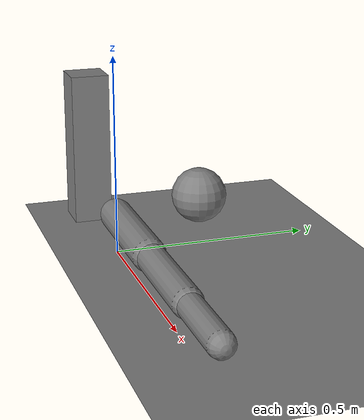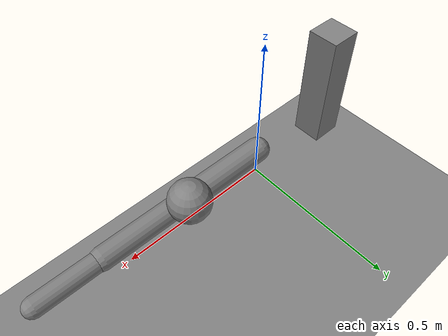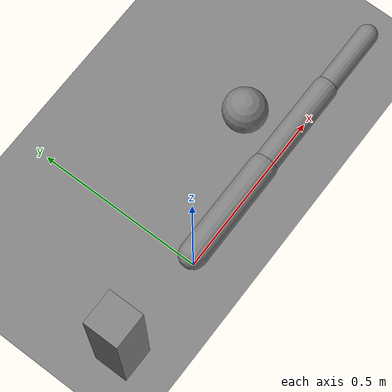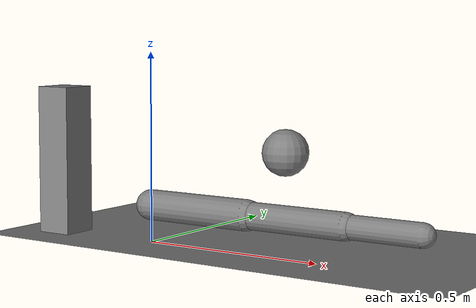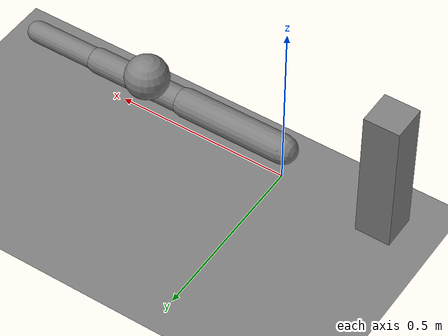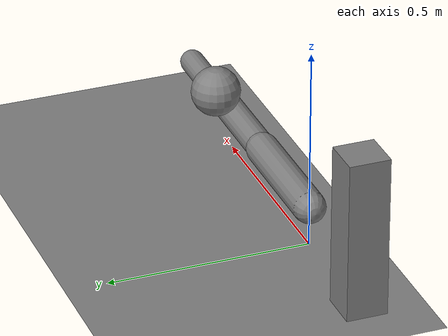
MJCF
<mujoco model="scene_collision">
  <compiler angle="radian"/>
  <option timestep="0.002"/>
  <worldbody>
    <geom name="floor" type="plane" size="2 2 0.1"/>
    <geom name="obstacle1" type="sphere" pos="0.35 0.1 0.25" size="0.06"/>
    <geom name="obstacle2" type="box" pos="-0.3 0 0.2" size="0.05 0.05 0.2"/>
    <body name="link1" pos="0 0 0.1">
      <joint name="j1" type="hinge" axis="0 0 1" range="-2.9 2.9" limited="true"/>
      <geom name="g1" type="capsule" fromto="0 0 0 0.3 0 0" size="0.04"/>
      <body name="link2" pos="0.3 0 0">
        <joint name="j2" type="hinge" axis="0 1 0" range="-1.9 1.9" limited="true"/>
        <geom name="g2" type="capsule" fromto="0 0 0 0.28 0 0" size="0.035"/>
        <body name="link3" pos="0.28 0 0">
          <joint name="j3" type="hinge" axis="0 1 0" range="-2.4 2.4" limited="true"/>
          <geom name="g3" type="capsule" fromto="0 0 0 0.2 0 0" size="0.03"/>
          <site name="ee" pos="0.2 0 0" size="0.01"/>
        </body>
      </body>
    </body>
  </worldbody>
  <keyframe>
    <key name="home" qpos="0 0.4 -0.8"/>
  </keyframe>
</mujoco>
